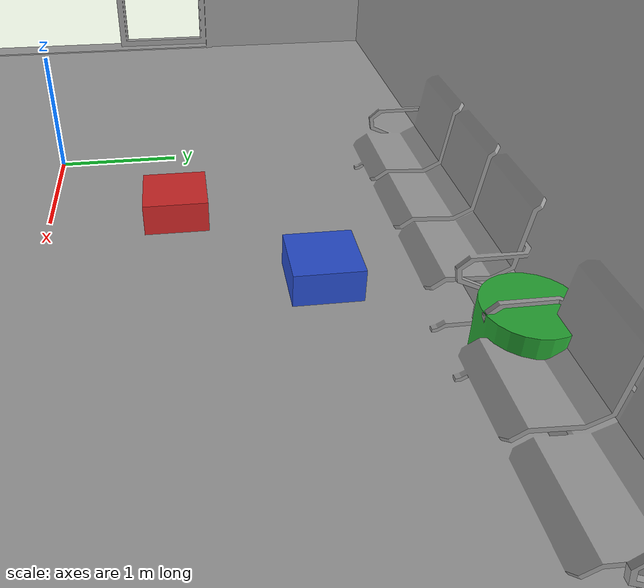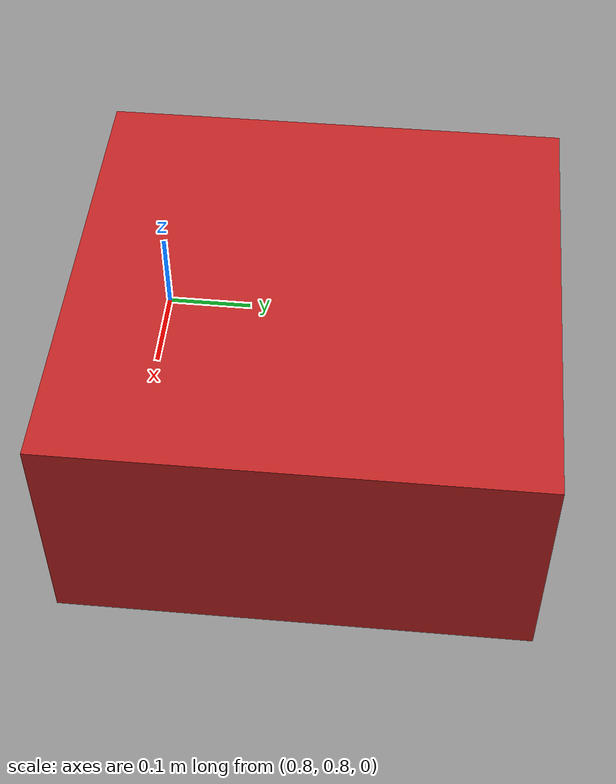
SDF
<sdf version="1.6">
 <world name="default">
  <light name="sun" type="directional">
   <pose>0 0 10 0 -0 0</pose>
   <diffuse>0.8 0.8 0.8 1</diffuse>
   <specular>0.2 0.2 0.2 1</specular>
   <attenuation>
    <range>1000</range>
    <constant>0.9</constant>
    <linear>0.01</linear>
    <quadratic>0.001</quadratic>
   </attenuation>
   <direction>-0.5 0.1 -0.9</direction>
  </light>
  <gravity>0 0 -9.8</gravity>
  <magnetic_field>6e-06 2.3e-05 -4.2e-05</magnetic_field>
  <atmosphere type="adiabatic"/>
  <physics name="default_physics" default="0" type="ode">
   <max_step_size>0.001</max_step_size>
   <real_time_factor>1</real_time_factor>
   <real_time_update_rate>1000</real_time_update_rate>
  </physics>
  <scene><ambient>0.4 0.4 0.4 1</ambient><background>0.7 0.7 0.7 1</background><shadows>0</shadows></scene>
  <audio><device>default</device></audio>
  <spherical_coordinates>
   <surface_model>EARTH_WGS84</surface_model>
   <latitude_deg>0</latitude_deg>
   <longitude_deg>0</longitude_deg>
   <elevation>0</elevation>
   <heading_deg>0</heading_deg>
  </spherical_coordinates>
  <model name="Hospital">
   <link name="link_0">
    <inertial>
     <mass>1</mass>
     <inertia>
      <ixx>0.166667</ixx>
      <ixy>0</ixy>
      <ixz>0</ixz>
      <iyy>0.166667</iyy>
      <iyz>0</iyz>
      <izz>0.166667</izz>
     </inertia>
    </inertial>
    <pose>4e-06 0 0 0 -0 0</pose>
    <visual name="visual">
     <geometry><mesh><uri>model://hospital/hospital.stl</uri><scale>1 1 1</scale></mesh></geometry>
     <material>
      <lighting>1</lighting>
      <script><uri>file://media/materials/scripts/gazebo.material</uri><name>Gazebo/Grey</name></script>
     </material>
    </visual>
    <collision name="collision">
     <geometry><mesh><uri>model://hospital/hospital.stl</uri><scale>1 1 1</scale></mesh></geometry>
     <surface>
      <friction>
       <ode><mu>1</mu><mu2>1</mu2><fdir1>0 0 0</fdir1><slip1>0</slip1><slip2>0</slip2></ode>
       <torsional>
        <coefficient>1</coefficient>
        <patch_radius>0</patch_radius>
        <surface_radius>0</surface_radius>
        <use_patch_radius>1</use_patch_radius>
        <ode><slip>0</slip></ode>
       </torsional>
      </friction>
      <bounce><restitution_coefficient>0</restitution_coefficient><threshold>1e+06</threshold></bounce>
      <contact>
       <collide_without_contact>0</collide_without_contact>
       <collide_without_contact_bitmask>1</collide_without_contact_bitmask>
       <collide_bitmask>1</collide_bitmask>
       <ode>
        <soft_cfm>0</soft_cfm>
        <soft_erp>0.2</soft_erp>
        <kp>1e+13</kp>
        <kd>1</kd>
        <max_vel>0.01</max_vel>
        <min_depth>0</min_depth>
       </ode>
       <bullet>
        <split_impulse>1</split_impulse>
        <split_impulse_penetration_threshold>-0.01</split_impulse_penetration_threshold>
        <soft_cfm>0</soft_cfm>
        <soft_erp>0.2</soft_erp>
        <kp>1e+13</kp>
        <kd>1</kd>
       </bullet>
      </contact>
     </surface>
    </collision>
   </link>
   <static>1</static>
   <pose>37.4958 0 0 0 -0 0</pose>
  </model>
  <model name="moving_obstacle1">
   <pose>1 1 0 0 0 0</pose>
   <link name="link">
    <collision name="collision"><geometry><box><size>0.5 0.5 0.5</size></box></geometry></collision>
    <visual name="visual">
     <geometry><box><size>0.5 0.5 0.5</size></box></geometry>
     <material>
      <script><uri>file://media/materials/scripts/gazebo.material</uri><name>Gazebo/Red</name></script>
     </material>
    </visual>
   </link>
   <plugin name="obstacle1" filename="libobstacle1.so"/>
  </model>
  <model name="moving_obstacle2">
   <pose>2 2 0 0 0 0</pose>
   <link name="link">
    <collision name="collision"><geometry><box><size>0.5 0.5 0.5</size></box></geometry></collision>
    <visual name="visual">
     <geometry><box><size>0.5 0.5 0.5</size></box></geometry>
     <material>
      <script><uri>file://media/materials/scripts/gazebo.material</uri><name>Gazebo/Blue</name></script>
     </material>
    </visual>
   </link>
   <plugin name="obstacle2" filename="libobstacle2.so"/>
  </model>
  <model name="rotating_obstacle">
   <pose>3 3 0 0 0 0</pose>
   <link name="link">
    <collision name="collision">
     <geometry><cylinder><radius>0.3</radius><length>1.0</length></cylinder></geometry>
    </collision>
    <visual name="visual">
     <geometry><cylinder><radius>0.3</radius><length>1.0</length></cylinder></geometry>
     <material>
      <script><uri>file://media/materials/scripts/gazebo.material</uri><name>Gazebo/Green</name></script>
     </material>
    </visual>
   </link>
   <plugin name="obstacles" filename="libobstacles.so"/>
  </model>
 </world>
</sdf>
